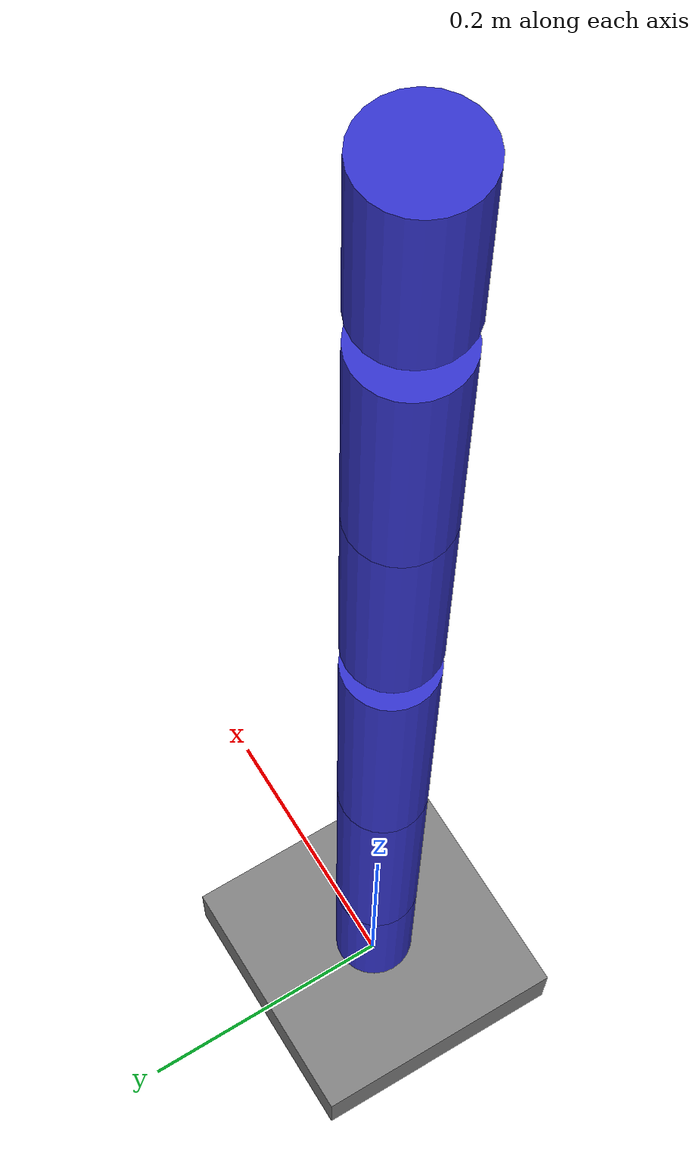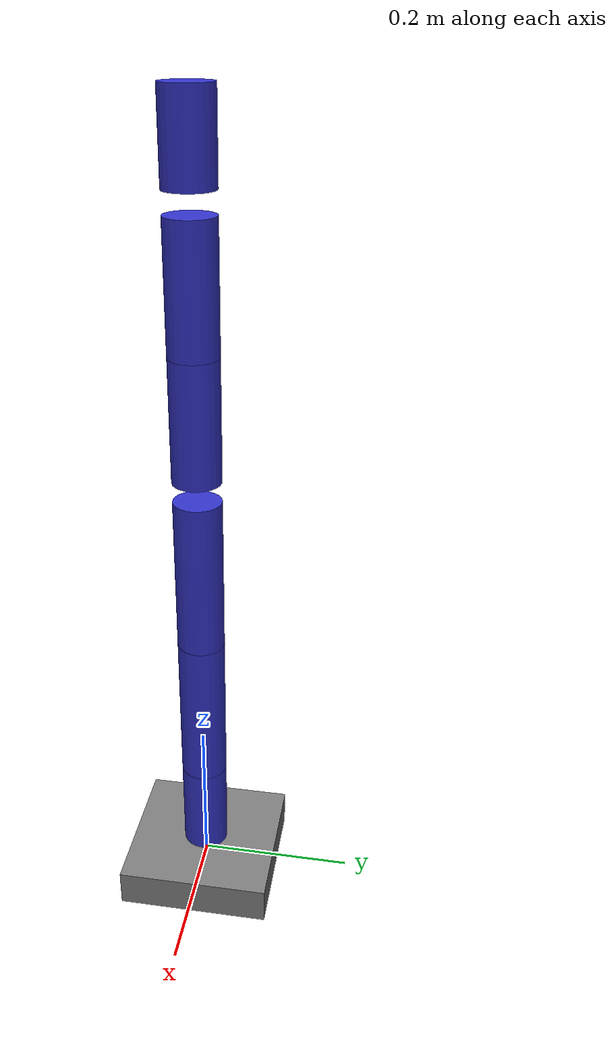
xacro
<?xml version="1.0"?>
<robot name="simple_arm" xmlns:xacro="http://www.ros.org/wiki/xacro">
  <link name="base_link">
    <visual>
      <geometry>
        <box size="0.2 0.2 0.05"/>
      </geometry>
      <material name="grey">
        <color rgba="0.5 0.5 0.5 1.0"/>
      </material>
    </visual>
  </link>

  <xacro:macro name="arm_link" params="name length">
    <link name="${name}">
      <visual>
        <geometry>
          <cylinder length="${length}" radius="0.03"/>
        </geometry>
        <material name="blue">
          <color rgba="0.2 0.2 0.8 1.0"/>
        </material>
      </visual>
    </link>
  </xacro:macro>

  <xacro:arm_link name="link1" length="0.2"/>
  <xacro:arm_link name="link2" length="0.2"/>
  <xacro:arm_link name="link3" length="0.2"/>
  <xacro:arm_link name="link4" length="0.15"/>
  <xacro:arm_link name="link5" length="0.15"/>
  <xacro:arm_link name="link6" length="0.1"/>

  <joint name="joint1" type="revolute">
    <parent link="base_link"/>
    <child link="link1"/>
    <origin xyz="0 0 0.05" rpy="0 0 0"/>
    <axis xyz="0 0 1"/>
    <limit effort="50" velocity="1" lower="-3.14" upper="3.14"/>
  </joint>
  <joint name="joint2" type="revolute">
    <parent link="link1"/>
    <child link="link2"/>
    <origin xyz="0 0 0.2" rpy="0 0 0"/>
    <axis xyz="0 1 0"/>
    <limit effort="50" velocity="1" lower="-2.4" upper="2.4"/>
  </joint>
  <joint name="joint3" type="revolute">
    <parent link="link2"/>
    <child link="link3"/>
    <origin xyz="0 0 0.2" rpy="0 0 0"/>
    <axis xyz="0 1 0"/>
    <limit effort="50" velocity="1" lower="-2.4" upper="2.4"/>
  </joint>
  <joint name="joint4" type="revolute">
    <parent link="link3"/>
    <child link="link4"/>
    <origin xyz="0 0 0.2" rpy="0 0 0"/>
    <axis xyz="1 0 0"/>
    <limit effort="20" velocity="1" lower="-3.14" upper="3.14"/>
  </joint>
  <joint name="joint5" type="revolute">
    <parent link="link4"/>
    <child link="link5"/>
    <origin xyz="0 0 0.15" rpy="0 0 0"/>
    <axis xyz="0 1 0"/>
    <limit effort="20" velocity="1" lower="-3.14" upper="3.14"/>
  </joint>
  <joint name="joint6" type="revolute">
    <parent link="link5"/>
    <child link="link6"/>
    <origin xyz="0 0 0.15" rpy="0 0 0"/>
    <axis xyz="1 0 0"/>
    <limit effort="10" velocity="1" lower="-3.14" upper="3.14"/>
  </joint>

  <link name="tool0"/>
  <joint name="tool0_joint" type="fixed">
    <parent link="link6"/>
    <child link="tool0"/>
    <origin xyz="0 0 0.1" rpy="0 0 0"/>
  </joint>
</robot>
